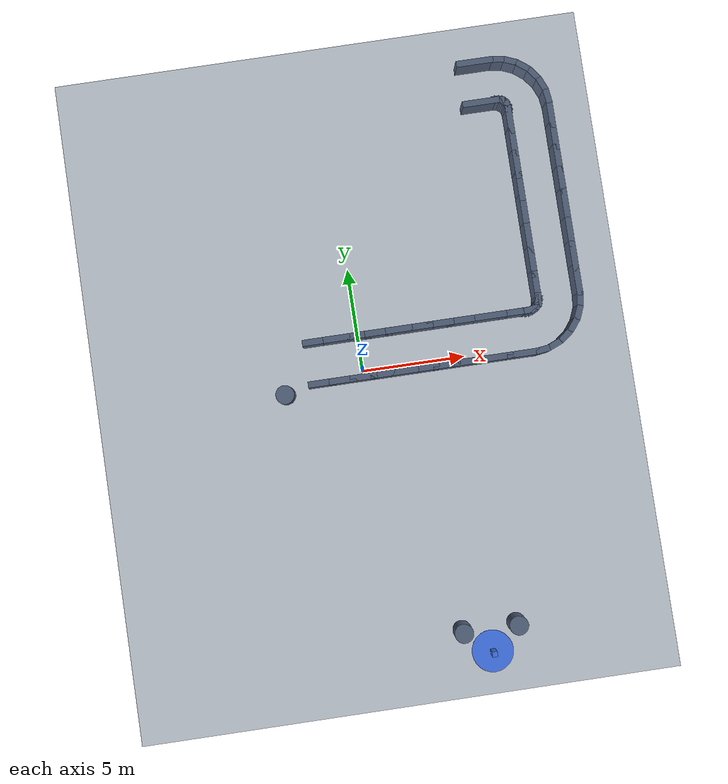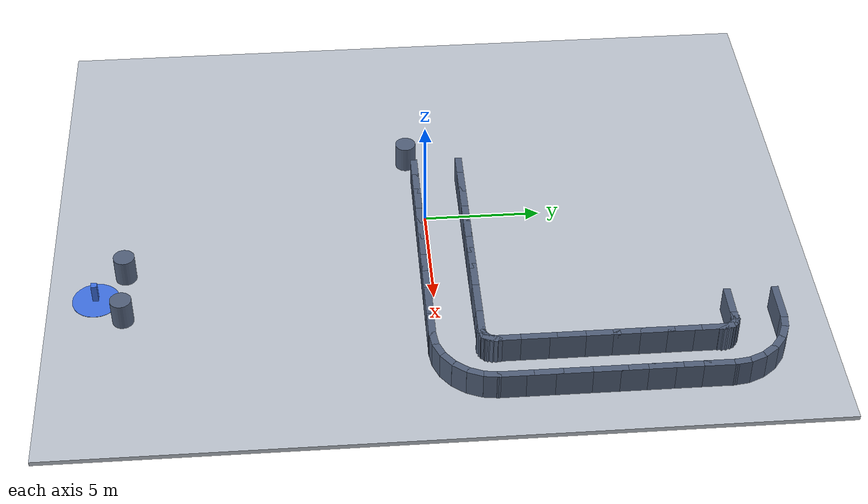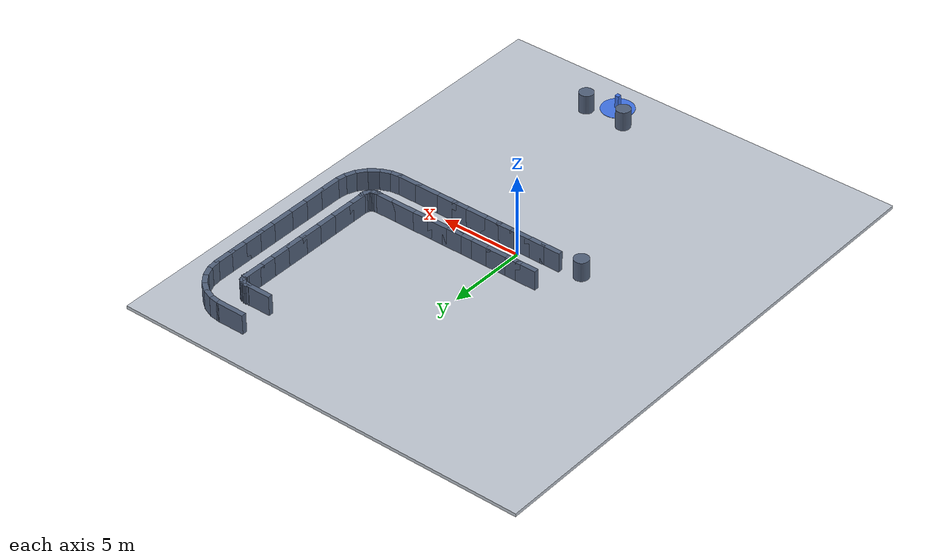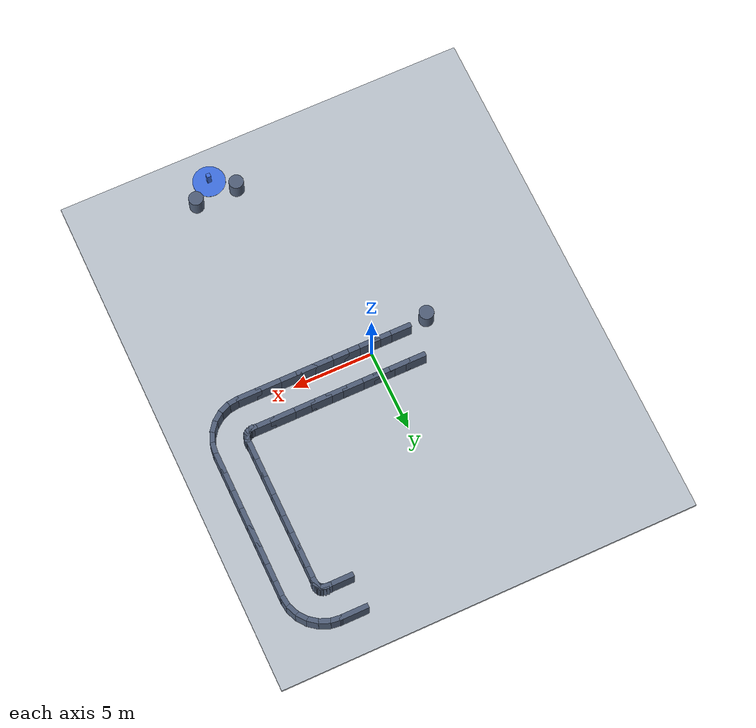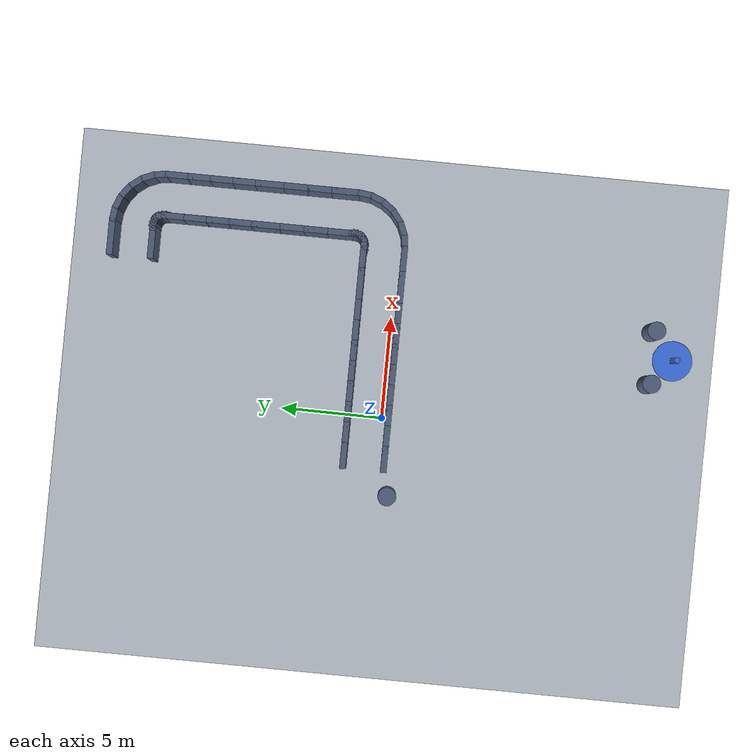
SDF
<sdf version="1.6">
 <world name="merged_maze">
  <model name="ground_plane">
   <static>true</static>
   <pose>0 0 -0.1 0 0 0</pose>
   <link name="link">
    <collision name="collision">
     <geometry><box><size>25.9198 32.2599 0.2</size></box></geometry>
     <surface><friction><ode><mu>1</mu><mu2>1</mu2></ode></friction></surface>
    </collision>
    <visual name="visual">
     <geometry><box><size>25.9198 32.2599 0.2</size></box></geometry>
     <material><ambient>0.75 0.78 0.82 1</ambient><diffuse>0.75 0.78 0.82 1</diffuse></material>
    </visual>
   </link>
  </model>
  <model name="maze_1_straight">
   <static>true</static>
   <link name="w00">
    <pose>-2 1.6701 0.6 0 0 0</pose>
    <collision name="collision"><geometry><box><size>1.3 0.3 1.2</size></box></geometry></collision>
    <visual name="visual">
     <geometry><box><size>1.3 0.3 1.2</size></box></geometry>
     <material><ambient>0.32 0.38 0.48 1</ambient><diffuse>0.32 0.38 0.48 1</diffuse></material>
    </visual>
   </link>
   <link name="w01">
    <pose>-2 -0.3299 0.6 0 0 0</pose>
    <collision name="collision"><geometry><box><size>1.3 0.3 1.2</size></box></geometry></collision>
    <visual name="visual">
     <geometry><box><size>1.3 0.3 1.2</size></box></geometry>
     <material><ambient>0.32 0.38 0.48 1</ambient><diffuse>0.32 0.38 0.48 1</diffuse></material>
    </visual>
   </link>
   <link name="w02">
    <pose>-1 1.6701 0.6 0 0 0</pose>
    <collision name="collision"><geometry><box><size>1.3 0.3 1.2</size></box></geometry></collision>
    <visual name="visual">
     <geometry><box><size>1.3 0.3 1.2</size></box></geometry>
     <material><ambient>0.32 0.38 0.48 1</ambient><diffuse>0.32 0.38 0.48 1</diffuse></material>
    </visual>
   </link>
   <link name="w03">
    <pose>-1 -0.3299 0.6 0 0 0</pose>
    <collision name="collision"><geometry><box><size>1.3 0.3 1.2</size></box></geometry></collision>
    <visual name="visual">
     <geometry><box><size>1.3 0.3 1.2</size></box></geometry>
     <material><ambient>0.32 0.38 0.48 1</ambient><diffuse>0.32 0.38 0.48 1</diffuse></material>
    </visual>
   </link>
   <link name="w04">
    <pose>0 1.6701 0.6 0 0 0</pose>
    <collision name="collision"><geometry><box><size>1.3 0.3 1.2</size></box></geometry></collision>
    <visual name="visual">
     <geometry><box><size>1.3 0.3 1.2</size></box></geometry>
     <material><ambient>0.32 0.38 0.48 1</ambient><diffuse>0.32 0.38 0.48 1</diffuse></material>
    </visual>
   </link>
   <link name="w05">
    <pose>0 -0.3299 0.6 0 0 0</pose>
    <collision name="collision"><geometry><box><size>1.3 0.3 1.2</size></box></geometry></collision>
    <visual name="visual">
     <geometry><box><size>1.3 0.3 1.2</size></box></geometry>
     <material><ambient>0.32 0.38 0.48 1</ambient><diffuse>0.32 0.38 0.48 1</diffuse></material>
    </visual>
   </link>
   <link name="w06">
    <pose>1 1.6701 0.6 0 0 0</pose>
    <collision name="collision"><geometry><box><size>1.3 0.3 1.2</size></box></geometry></collision>
    <visual name="visual">
     <geometry><box><size>1.3 0.3 1.2</size></box></geometry>
     <material><ambient>0.32 0.38 0.48 1</ambient><diffuse>0.32 0.38 0.48 1</diffuse></material>
    </visual>
   </link>
   <link name="w07">
    <pose>1 -0.3299 0.6 0 0 0</pose>
    <collision name="collision"><geometry><box><size>1.3 0.3 1.2</size></box></geometry></collision>
    <visual name="visual">
     <geometry><box><size>1.3 0.3 1.2</size></box></geometry>
     <material><ambient>0.32 0.38 0.48 1</ambient><diffuse>0.32 0.38 0.48 1</diffuse></material>
    </visual>
   </link>
   <link name="w08">
    <pose>2 1.6701 0.6 0 0 0</pose>
    <collision name="collision"><geometry><box><size>1.3 0.3 1.2</size></box></geometry></collision>
    <visual name="visual">
     <geometry><box><size>1.3 0.3 1.2</size></box></geometry>
     <material><ambient>0.32 0.38 0.48 1</ambient><diffuse>0.32 0.38 0.48 1</diffuse></material>
    </visual>
   </link>
   <link name="w09">
    <pose>2 -0.3299 0.6 0 0 0</pose>
    <collision name="collision"><geometry><box><size>1.3 0.3 1.2</size></box></geometry></collision>
    <visual name="visual">
     <geometry><box><size>1.3 0.3 1.2</size></box></geometry>
     <material><ambient>0.32 0.38 0.48 1</ambient><diffuse>0.32 0.38 0.48 1</diffuse></material>
    </visual>
   </link>
   <link name="w10">
    <pose>3 1.6701 0.6 0 0 0</pose>
    <collision name="collision"><geometry><box><size>1.3 0.3 1.2</size></box></geometry></collision>
    <visual name="visual">
     <geometry><box><size>1.3 0.3 1.2</size></box></geometry>
     <material><ambient>0.32 0.38 0.48 1</ambient><diffuse>0.32 0.38 0.48 1</diffuse></material>
    </visual>
   </link>
   <link name="w11">
    <pose>3 -0.3299 0.6 0 0 0</pose>
    <collision name="collision"><geometry><box><size>1.3 0.3 1.2</size></box></geometry></collision>
    <visual name="visual">
     <geometry><box><size>1.3 0.3 1.2</size></box></geometry>
     <material><ambient>0.32 0.38 0.48 1</ambient><diffuse>0.32 0.38 0.48 1</diffuse></material>
    </visual>
   </link>
   <link name="w12">
    <pose>4 1.6701 0.6 0 0 0</pose>
    <collision name="collision"><geometry><box><size>1.3 0.3 1.2</size></box></geometry></collision>
    <visual name="visual">
     <geometry><box><size>1.3 0.3 1.2</size></box></geometry>
     <material><ambient>0.32 0.38 0.48 1</ambient><diffuse>0.32 0.38 0.48 1</diffuse></material>
    </visual>
   </link>
   <link name="w13">
    <pose>4 -0.3299 0.6 0 0 0</pose>
    <collision name="collision"><geometry><box><size>1.3 0.3 1.2</size></box></geometry></collision>
    <visual name="visual">
     <geometry><box><size>1.3 0.3 1.2</size></box></geometry>
     <material><ambient>0.32 0.38 0.48 1</ambient><diffuse>0.32 0.38 0.48 1</diffuse></material>
    </visual>
   </link>
   <link name="w14">
    <pose>5 1.6701 0.6 0 0 0</pose>
    <collision name="collision"><geometry><box><size>1.3 0.3 1.2</size></box></geometry></collision>
    <visual name="visual">
     <geometry><box><size>1.3 0.3 1.2</size></box></geometry>
     <material><ambient>0.32 0.38 0.48 1</ambient><diffuse>0.32 0.38 0.48 1</diffuse></material>
    </visual>
   </link>
   <link name="w15">
    <pose>5 -0.3299 0.6 0 0 0</pose>
    <collision name="collision"><geometry><box><size>1.3 0.3 1.2</size></box></geometry></collision>
    <visual name="visual">
     <geometry><box><size>1.3 0.3 1.2</size></box></geometry>
     <material><ambient>0.32 0.38 0.48 1</ambient><diffuse>0.32 0.38 0.48 1</diffuse></material>
    </visual>
   </link>
  </model>
  <model name="maze_2_L">
   <static>true</static>
   <link name="w00">
    <pose>6.425 1.6701 0.6 0 0 0</pose>
    <collision name="collision"><geometry><box><size>1.55 0.3 1.2</size></box></geometry></collision>
    <visual name="visual">
     <geometry><box><size>1.55 0.3 1.2</size></box></geometry>
     <material><ambient>0.32 0.38 0.48 1</ambient><diffuse>0.32 0.38 0.48 1</diffuse></material>
    </visual>
   </link>
   <link name="w01">
    <pose>6.425 -0.3299 0.6 0 0 0</pose>
    <collision name="collision"><geometry><box><size>1.55 0.3 1.2</size></box></geometry></collision>
    <visual name="visual">
     <geometry><box><size>1.55 0.3 1.2</size></box></geometry>
     <material><ambient>0.32 0.38 0.48 1</ambient><diffuse>0.32 0.38 0.48 1</diffuse></material>
    </visual>
   </link>
   <link name="w02">
    <pose>7.675 1.6701 0.6 0 0 0</pose>
    <collision name="collision"><geometry><box><size>1.55 0.3 1.2</size></box></geometry></collision>
    <visual name="visual">
     <geometry><box><size>1.55 0.3 1.2</size></box></geometry>
     <material><ambient>0.32 0.38 0.48 1</ambient><diffuse>0.32 0.38 0.48 1</diffuse></material>
    </visual>
   </link>
   <link name="w03">
    <pose>7.675 -0.3299 0.6 0 0 0</pose>
    <collision name="collision"><geometry><box><size>1.55 0.3 1.2</size></box></geometry></collision>
    <visual name="visual">
     <geometry><box><size>1.55 0.3 1.2</size></box></geometry>
     <material><ambient>0.32 0.38 0.48 1</ambient><diffuse>0.32 0.38 0.48 1</diffuse></material>
    </visual>
   </link>
   <link name="w04">
    <pose>8.364 1.6871 0.6 0 0 0.1309</pose>
    <collision name="collision"><geometry><box><size>0.692 0.3 1.2</size></box></geometry></collision>
    <visual name="visual">
     <geometry><box><size>0.692 0.3 1.2</size></box></geometry>
     <material><ambient>0.32 0.38 0.48 1</ambient><diffuse>0.32 0.38 0.48 1</diffuse></material>
    </visual>
   </link>
   <link name="w05">
    <pose>8.625 -0.2959 0.6 0 0 0.1309</pose>
    <collision name="collision"><geometry><box><size>0.692 0.3 1.2</size></box></geometry></collision>
    <visual name="visual">
     <geometry><box><size>0.692 0.3 1.2</size></box></geometry>
     <material><ambient>0.32 0.38 0.48 1</ambient><diffuse>0.32 0.38 0.48 1</diffuse></material>
    </visual>
   </link>
   <link name="w06">
    <pose>8.486 1.7201 0.6 0 0 0.3927</pose>
    <collision name="collision"><geometry><box><size>0.692 0.3 1.2</size></box></geometry></collision>
    <visual name="visual">
     <geometry><box><size>0.692 0.3 1.2</size></box></geometry>
     <material><ambient>0.32 0.38 0.48 1</ambient><diffuse>0.32 0.38 0.48 1</diffuse></material>
    </visual>
   </link>
   <link name="w07">
    <pose>9.252 -0.1279 0.6 0 0 0.3927</pose>
    <collision name="collision"><geometry><box><size>0.692 0.3 1.2</size></box></geometry></collision>
    <visual name="visual">
     <geometry><box><size>0.692 0.3 1.2</size></box></geometry>
     <material><ambient>0.32 0.38 0.48 1</ambient><diffuse>0.32 0.38 0.48 1</diffuse></material>
    </visual>
   </link>
   <link name="w08">
    <pose>8.597 1.7841 0.6 0 0 0.6545</pose>
    <collision name="collision"><geometry><box><size>0.692 0.3 1.2</size></box></geometry></collision>
    <visual name="visual">
     <geometry><box><size>0.692 0.3 1.2</size></box></geometry>
     <material><ambient>0.32 0.38 0.48 1</ambient><diffuse>0.32 0.38 0.48 1</diffuse></material>
    </visual>
   </link>
   <link name="w09">
    <pose>9.814 0.1971 0.6 0 0 0.6545</pose>
    <collision name="collision"><geometry><box><size>0.692 0.3 1.2</size></box></geometry></collision>
    <visual name="visual">
     <geometry><box><size>0.692 0.3 1.2</size></box></geometry>
     <material><ambient>0.32 0.38 0.48 1</ambient><diffuse>0.32 0.38 0.48 1</diffuse></material>
    </visual>
   </link>
   <link name="w10">
    <pose>8.686 1.8731 0.6 0 0 0.9163</pose>
    <collision name="collision"><geometry><box><size>0.692 0.3 1.2</size></box></geometry></collision>
    <visual name="visual">
     <geometry><box><size>0.692 0.3 1.2</size></box></geometry>
     <material><ambient>0.32 0.38 0.48 1</ambient><diffuse>0.32 0.38 0.48 1</diffuse></material>
    </visual>
   </link>
   <link name="w11">
    <pose>10.273 0.6561 0.6 0 0 0.9163</pose>
    <collision name="collision"><geometry><box><size>0.692 0.3 1.2</size></box></geometry></collision>
    <visual name="visual">
     <geometry><box><size>0.692 0.3 1.2</size></box></geometry>
     <material><ambient>0.32 0.38 0.48 1</ambient><diffuse>0.32 0.38 0.48 1</diffuse></material>
    </visual>
   </link>
   <link name="w12">
    <pose>8.75 1.9841 0.6 0 0 1.1781</pose>
    <collision name="collision"><geometry><box><size>0.692 0.3 1.2</size></box></geometry></collision>
    <visual name="visual">
     <geometry><box><size>0.692 0.3 1.2</size></box></geometry>
     <material><ambient>0.32 0.38 0.48 1</ambient><diffuse>0.32 0.38 0.48 1</diffuse></material>
    </visual>
   </link>
   <link name="w13">
    <pose>10.598 1.2181 0.6 0 0 1.1781</pose>
    <collision name="collision"><geometry><box><size>0.692 0.3 1.2</size></box></geometry></collision>
    <visual name="visual">
     <geometry><box><size>0.692 0.3 1.2</size></box></geometry>
     <material><ambient>0.32 0.38 0.48 1</ambient><diffuse>0.32 0.38 0.48 1</diffuse></material>
    </visual>
   </link>
   <link name="w14">
    <pose>8.783 2.1061 0.6 0 0 1.4399</pose>
    <collision name="collision"><geometry><box><size>0.692 0.3 1.2</size></box></geometry></collision>
    <visual name="visual">
     <geometry><box><size>0.692 0.3 1.2</size></box></geometry>
     <material><ambient>0.32 0.38 0.48 1</ambient><diffuse>0.32 0.38 0.48 1</diffuse></material>
    </visual>
   </link>
   <link name="w15">
    <pose>10.766 1.8451 0.6 0 0 1.4399</pose>
    <collision name="collision"><geometry><box><size>0.692 0.3 1.2</size></box></geometry></collision>
    <visual name="visual">
     <geometry><box><size>0.692 0.3 1.2</size></box></geometry>
     <material><ambient>0.32 0.38 0.48 1</ambient><diffuse>0.32 0.38 0.48 1</diffuse></material>
    </visual>
   </link>
   <link name="w16">
    <pose>8.8 2.7531 0.6 0 0 1.5708</pose>
    <collision name="collision"><geometry><box><size>1.467 0.3 1.2</size></box></geometry></collision>
    <visual name="visual">
     <geometry><box><size>1.467 0.3 1.2</size></box></geometry>
     <material><ambient>0.32 0.38 0.48 1</ambient><diffuse>0.32 0.38 0.48 1</diffuse></material>
    </visual>
   </link>
   <link name="w17">
    <pose>10.8 2.7531 0.6 0 0 1.5708</pose>
    <collision name="collision"><geometry><box><size>1.467 0.3 1.2</size></box></geometry></collision>
    <visual name="visual">
     <geometry><box><size>1.467 0.3 1.2</size></box></geometry>
     <material><ambient>0.32 0.38 0.48 1</ambient><diffuse>0.32 0.38 0.48 1</diffuse></material>
    </visual>
   </link>
   <link name="w18">
    <pose>8.8 3.9201 0.6 0 0 1.5708</pose>
    <collision name="collision"><geometry><box><size>1.467 0.3 1.2</size></box></geometry></collision>
    <visual name="visual">
     <geometry><box><size>1.467 0.3 1.2</size></box></geometry>
     <material><ambient>0.32 0.38 0.48 1</ambient><diffuse>0.32 0.38 0.48 1</diffuse></material>
    </visual>
   </link>
   <link name="w19">
    <pose>10.8 3.9201 0.6 0 0 1.5708</pose>
    <collision name="collision"><geometry><box><size>1.467 0.3 1.2</size></box></geometry></collision>
    <visual name="visual">
     <geometry><box><size>1.467 0.3 1.2</size></box></geometry>
     <material><ambient>0.32 0.38 0.48 1</ambient><diffuse>0.32 0.38 0.48 1</diffuse></material>
    </visual>
   </link>
   <link name="w20">
    <pose>8.8 5.0871 0.6 0 0 1.5708</pose>
    <collision name="collision"><geometry><box><size>1.467 0.3 1.2</size></box></geometry></collision>
    <visual name="visual">
     <geometry><box><size>1.467 0.3 1.2</size></box></geometry>
     <material><ambient>0.32 0.38 0.48 1</ambient><diffuse>0.32 0.38 0.48 1</diffuse></material>
    </visual>
   </link>
   <link name="w21">
    <pose>10.8 5.0871 0.6 0 0 1.5708</pose>
    <collision name="collision"><geometry><box><size>1.467 0.3 1.2</size></box></geometry></collision>
    <visual name="visual">
     <geometry><box><size>1.467 0.3 1.2</size></box></geometry>
     <material><ambient>0.32 0.38 0.48 1</ambient><diffuse>0.32 0.38 0.48 1</diffuse></material>
    </visual>
   </link>
  </model>
  <model name="maze_3_shape7">
   <static>true</static>
   <link name="w00">
    <pose>8.8 6.5201 0.6 0 0 1.5708</pose>
    <collision name="collision"><geometry><box><size>1.4 0.3 1.2</size></box></geometry></collision>
    <visual name="visual">
     <geometry><box><size>1.4 0.3 1.2</size></box></geometry>
     <material><ambient>0.32 0.38 0.48 1</ambient><diffuse>0.32 0.38 0.48 1</diffuse></material>
    </visual>
   </link>
   <link name="w01">
    <pose>10.8 6.5201 0.6 0 0 1.5708</pose>
    <collision name="collision"><geometry><box><size>1.4 0.3 1.2</size></box></geometry></collision>
    <visual name="visual">
     <geometry><box><size>1.4 0.3 1.2</size></box></geometry>
     <material><ambient>0.32 0.38 0.48 1</ambient><diffuse>0.32 0.38 0.48 1</diffuse></material>
    </visual>
   </link>
   <link name="w02">
    <pose>8.8 7.6201 0.6 0 0 1.5708</pose>
    <collision name="collision"><geometry><box><size>1.4 0.3 1.2</size></box></geometry></collision>
    <visual name="visual">
     <geometry><box><size>1.4 0.3 1.2</size></box></geometry>
     <material><ambient>0.32 0.38 0.48 1</ambient><diffuse>0.32 0.38 0.48 1</diffuse></material>
    </visual>
   </link>
   <link name="w03">
    <pose>10.8 7.6201 0.6 0 0 1.5708</pose>
    <collision name="collision"><geometry><box><size>1.4 0.3 1.2</size></box></geometry></collision>
    <visual name="visual">
     <geometry><box><size>1.4 0.3 1.2</size></box></geometry>
     <material><ambient>0.32 0.38 0.48 1</ambient><diffuse>0.32 0.38 0.48 1</diffuse></material>
    </visual>
   </link>
   <link name="w04">
    <pose>8.8 8.7201 0.6 0 0 1.5708</pose>
    <collision name="collision"><geometry><box><size>1.4 0.3 1.2</size></box></geometry></collision>
    <visual name="visual">
     <geometry><box><size>1.4 0.3 1.2</size></box></geometry>
     <material><ambient>0.32 0.38 0.48 1</ambient><diffuse>0.32 0.38 0.48 1</diffuse></material>
    </visual>
   </link>
   <link name="w05">
    <pose>10.8 8.7201 0.6 0 0 1.5708</pose>
    <collision name="collision"><geometry><box><size>1.4 0.3 1.2</size></box></geometry></collision>
    <visual name="visual">
     <geometry><box><size>1.4 0.3 1.2</size></box></geometry>
     <material><ambient>0.32 0.38 0.48 1</ambient><diffuse>0.32 0.38 0.48 1</diffuse></material>
    </visual>
   </link>
   <link name="w06">
    <pose>8.8 9.8201 0.6 0 0 1.5708</pose>
    <collision name="collision"><geometry><box><size>1.4 0.3 1.2</size></box></geometry></collision>
    <visual name="visual">
     <geometry><box><size>1.4 0.3 1.2</size></box></geometry>
     <material><ambient>0.32 0.38 0.48 1</ambient><diffuse>0.32 0.38 0.48 1</diffuse></material>
    </visual>
   </link>
   <link name="w07">
    <pose>10.8 9.8201 0.6 0 0 1.5708</pose>
    <collision name="collision"><geometry><box><size>1.4 0.3 1.2</size></box></geometry></collision>
    <visual name="visual">
     <geometry><box><size>1.4 0.3 1.2</size></box></geometry>
     <material><ambient>0.32 0.38 0.48 1</ambient><diffuse>0.32 0.38 0.48 1</diffuse></material>
    </visual>
   </link>
   <link name="w08">
    <pose>8.8 10.9201 0.6 0 0 1.5708</pose>
    <collision name="collision"><geometry><box><size>1.4 0.3 1.2</size></box></geometry></collision>
    <visual name="visual">
     <geometry><box><size>1.4 0.3 1.2</size></box></geometry>
     <material><ambient>0.32 0.38 0.48 1</ambient><diffuse>0.32 0.38 0.48 1</diffuse></material>
    </visual>
   </link>
   <link name="w09">
    <pose>10.8 10.9201 0.6 0 0 1.5708</pose>
    <collision name="collision"><geometry><box><size>1.4 0.3 1.2</size></box></geometry></collision>
    <visual name="visual">
     <geometry><box><size>1.4 0.3 1.2</size></box></geometry>
     <material><ambient>0.32 0.38 0.48 1</ambient><diffuse>0.32 0.38 0.48 1</diffuse></material>
    </visual>
   </link>
   <link name="w10">
    <pose>8.783 11.5341 0.6 0 0 1.7017</pose>
    <collision name="collision"><geometry><box><size>0.692 0.3 1.2</size></box></geometry></collision>
    <visual name="visual">
     <geometry><box><size>0.692 0.3 1.2</size></box></geometry>
     <material><ambient>0.32 0.38 0.48 1</ambient><diffuse>0.32 0.38 0.48 1</diffuse></material>
    </visual>
   </link>
   <link name="w11">
    <pose>10.766 11.7951 0.6 0 0 1.7017</pose>
    <collision name="collision"><geometry><box><size>0.692 0.3 1.2</size></box></geometry></collision>
    <visual name="visual">
     <geometry><box><size>0.692 0.3 1.2</size></box></geometry>
     <material><ambient>0.32 0.38 0.48 1</ambient><diffuse>0.32 0.38 0.48 1</diffuse></material>
    </visual>
   </link>
   <link name="w12">
    <pose>8.75 11.6561 0.6 0 0 1.9635</pose>
    <collision name="collision"><geometry><box><size>0.692 0.3 1.2</size></box></geometry></collision>
    <visual name="visual">
     <geometry><box><size>0.692 0.3 1.2</size></box></geometry>
     <material><ambient>0.32 0.38 0.48 1</ambient><diffuse>0.32 0.38 0.48 1</diffuse></material>
    </visual>
   </link>
   <link name="w13">
    <pose>10.598 12.4221 0.6 0 0 1.9635</pose>
    <collision name="collision"><geometry><box><size>0.692 0.3 1.2</size></box></geometry></collision>
    <visual name="visual">
     <geometry><box><size>0.692 0.3 1.2</size></box></geometry>
     <material><ambient>0.32 0.38 0.48 1</ambient><diffuse>0.32 0.38 0.48 1</diffuse></material>
    </visual>
   </link>
   <link name="w14">
    <pose>8.686 11.7671 0.6 0 0 2.2253</pose>
    <collision name="collision"><geometry><box><size>0.692 0.3 1.2</size></box></geometry></collision>
    <visual name="visual">
     <geometry><box><size>0.692 0.3 1.2</size></box></geometry>
     <material><ambient>0.32 0.38 0.48 1</ambient><diffuse>0.32 0.38 0.48 1</diffuse></material>
    </visual>
   </link>
   <link name="w15">
    <pose>10.273 12.9841 0.6 0 0 2.2253</pose>
    <collision name="collision"><geometry><box><size>0.692 0.3 1.2</size></box></geometry></collision>
    <visual name="visual">
     <geometry><box><size>0.692 0.3 1.2</size></box></geometry>
     <material><ambient>0.32 0.38 0.48 1</ambient><diffuse>0.32 0.38 0.48 1</diffuse></material>
    </visual>
   </link>
   <link name="w16">
    <pose>8.597 11.8561 0.6 0 0 2.4871</pose>
    <collision name="collision"><geometry><box><size>0.692 0.3 1.2</size></box></geometry></collision>
    <visual name="visual">
     <geometry><box><size>0.692 0.3 1.2</size></box></geometry>
     <material><ambient>0.32 0.38 0.48 1</ambient><diffuse>0.32 0.38 0.48 1</diffuse></material>
    </visual>
   </link>
   <link name="w17">
    <pose>9.814 13.4431 0.6 0 0 2.4871</pose>
    <collision name="collision"><geometry><box><size>0.692 0.3 1.2</size></box></geometry></collision>
    <visual name="visual">
     <geometry><box><size>0.692 0.3 1.2</size></box></geometry>
     <material><ambient>0.32 0.38 0.48 1</ambient><diffuse>0.32 0.38 0.48 1</diffuse></material>
    </visual>
   </link>
   <link name="w18">
    <pose>8.486 11.9201 0.6 0 0 2.7489</pose>
    <collision name="collision"><geometry><box><size>0.692 0.3 1.2</size></box></geometry></collision>
    <visual name="visual">
     <geometry><box><size>0.692 0.3 1.2</size></box></geometry>
     <material><ambient>0.32 0.38 0.48 1</ambient><diffuse>0.32 0.38 0.48 1</diffuse></material>
    </visual>
   </link>
   <link name="w19">
    <pose>9.252 13.7681 0.6 0 0 2.7489</pose>
    <collision name="collision"><geometry><box><size>0.692 0.3 1.2</size></box></geometry></collision>
    <visual name="visual">
     <geometry><box><size>0.692 0.3 1.2</size></box></geometry>
     <material><ambient>0.32 0.38 0.48 1</ambient><diffuse>0.32 0.38 0.48 1</diffuse></material>
    </visual>
   </link>
   <link name="w20">
    <pose>8.364 11.9531 0.6 0 0 3.0107</pose>
    <collision name="collision"><geometry><box><size>0.692 0.3 1.2</size></box></geometry></collision>
    <visual name="visual">
     <geometry><box><size>0.692 0.3 1.2</size></box></geometry>
     <material><ambient>0.32 0.38 0.48 1</ambient><diffuse>0.32 0.38 0.48 1</diffuse></material>
    </visual>
   </link>
   <link name="w21">
    <pose>8.625 13.9361 0.6 0 0 3.0107</pose>
    <collision name="collision"><geometry><box><size>0.692 0.3 1.2</size></box></geometry></collision>
    <visual name="visual">
     <geometry><box><size>0.692 0.3 1.2</size></box></geometry>
     <material><ambient>0.32 0.38 0.48 1</ambient><diffuse>0.32 0.38 0.48 1</diffuse></material>
    </visual>
   </link>
   <link name="w22">
    <pose>7.55 11.9701 0.6 0 0 3.1416</pose>
    <collision name="collision"><geometry><box><size>1.8 0.3 1.2</size></box></geometry></collision>
    <visual name="visual">
     <geometry><box><size>1.8 0.3 1.2</size></box></geometry>
     <material><ambient>0.32 0.38 0.48 1</ambient><diffuse>0.32 0.38 0.48 1</diffuse></material>
    </visual>
   </link>
   <link name="w23">
    <pose>7.55 13.9701 0.6 0 0 3.1416</pose>
    <collision name="collision"><geometry><box><size>1.8 0.3 1.2</size></box></geometry></collision>
    <visual name="visual">
     <geometry><box><size>1.8 0.3 1.2</size></box></geometry>
     <material><ambient>0.32 0.38 0.48 1</ambient><diffuse>0.32 0.38 0.48 1</diffuse></material>
    </visual>
   </link>
  </model>
  <model name="marker_exit">
   <static>true</static>
   <pose>4.2 -14.1299 0.5 0 0 0</pose>
   <link name="link">
    <collision name="collision"><geometry><box><size>0.25 0.25 0.8</size></box></geometry></collision>
    <visual name="visual">
     <geometry><box><size>0.25 0.25 0.8</size></box></geometry>
     <material><ambient>0.25 0.45 0.9 1</ambient><diffuse>0.25 0.45 0.9 1</diffuse></material>
    </visual>
   </link>
  </model>
  <model name="finish_pad">
   <static>true</static>
   <pose>4.2 -14.1299 0.011 0 0 0</pose>
   <link name="link">
    <visual name="visual">
     <geometry><cylinder><radius>1</radius><length>0.02</length></cylinder></geometry>
     <material><ambient>0.25 0.45 0.9 1</ambient><diffuse>0.25 0.45 0.9 1</diffuse></material>
    </visual>
   </link>
  </model>
  <model name="funnel_post_0">
   <static>true</static>
   <pose>-3.8 -0.6299 0.6 0 0 0</pose>
   <link name="link">
    <collision name="collision">
     <geometry><cylinder><radius>0.45</radius><length>1.2</length></cylinder></geometry>
    </collision>
    <visual name="visual">
     <geometry><cylinder><radius>0.45</radius><length>1.2</length></cylinder></geometry>
     <material><ambient>0.32 0.38 0.48 1</ambient><diffuse>0.32 0.38 0.48 1</diffuse></material>
    </visual>
   </link>
  </model>
  <model name="funnel_post_2">
   <static>true</static>
   <pose>2.9 -12.9299 0.6 0 0 0</pose>
   <link name="link">
    <collision name="collision">
     <geometry><cylinder><radius>0.45</radius><length>1.2</length></cylinder></geometry>
    </collision>
    <visual name="visual">
     <geometry><cylinder><radius>0.45</radius><length>1.2</length></cylinder></geometry>
     <material><ambient>0.32 0.38 0.48 1</ambient><diffuse>0.32 0.38 0.48 1</diffuse></material>
    </visual>
   </link>
  </model>
  <model name="funnel_post_3">
   <static>true</static>
   <pose>5.5 -12.9299 0.6 0 0 0</pose>
   <link name="link">
    <collision name="collision">
     <geometry><cylinder><radius>0.45</radius><length>1.2</length></cylinder></geometry>
    </collision>
    <visual name="visual">
     <geometry><cylinder><radius>0.45</radius><length>1.2</length></cylinder></geometry>
     <material><ambient>0.32 0.38 0.48 1</ambient><diffuse>0.32 0.38 0.48 1</diffuse></material>
    </visual>
   </link>
  </model>
 </world>
</sdf>
